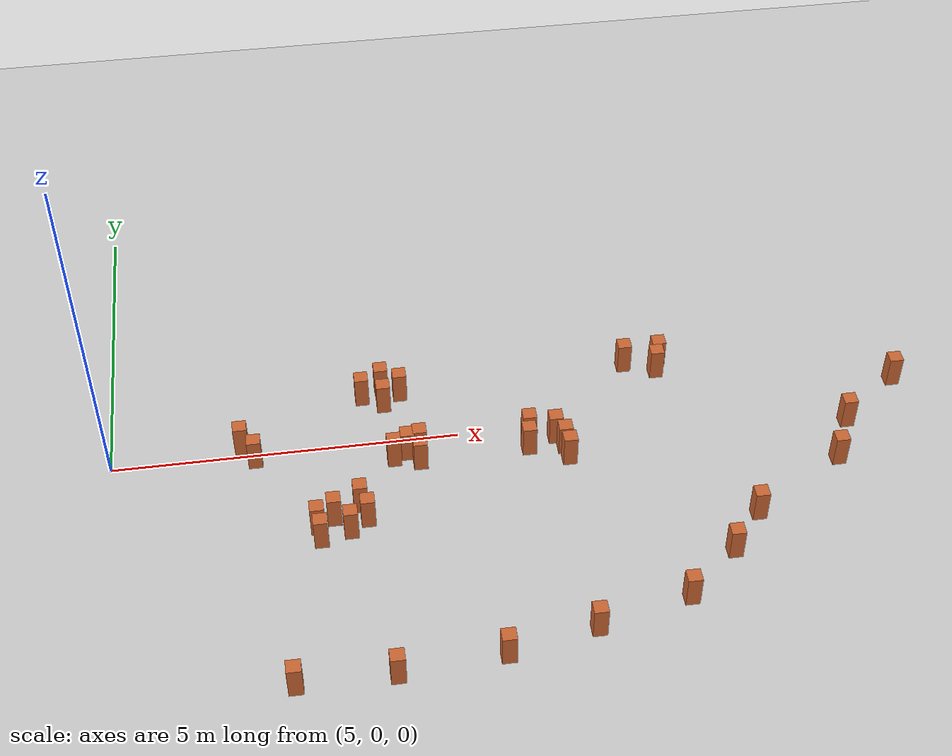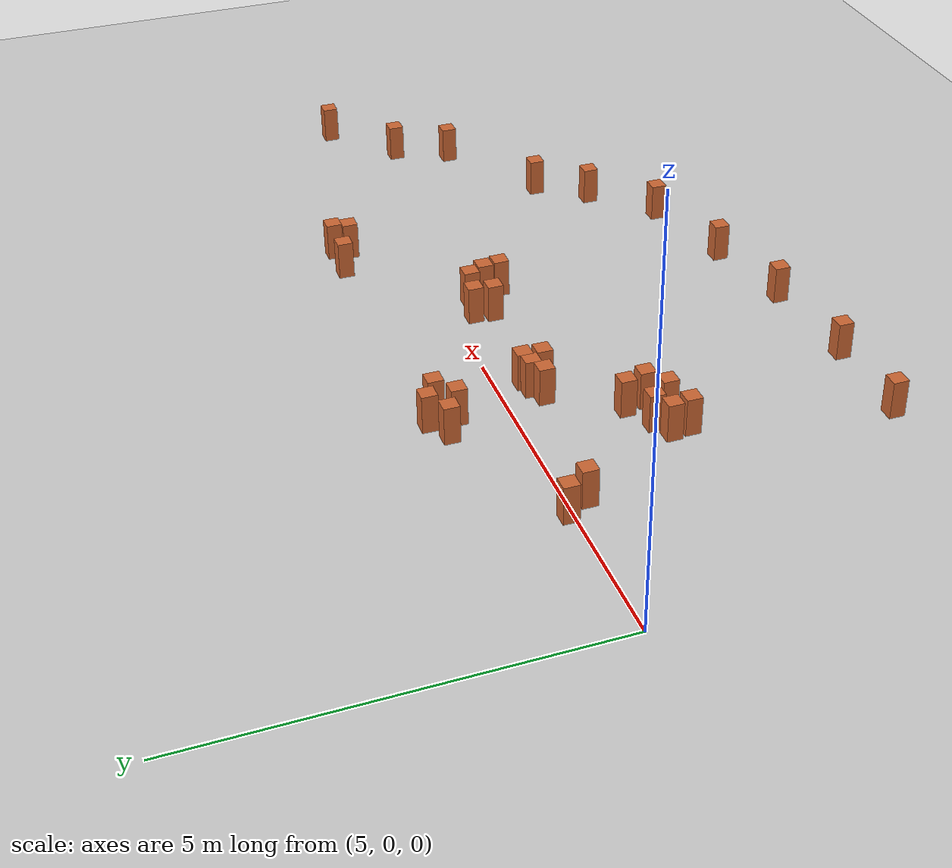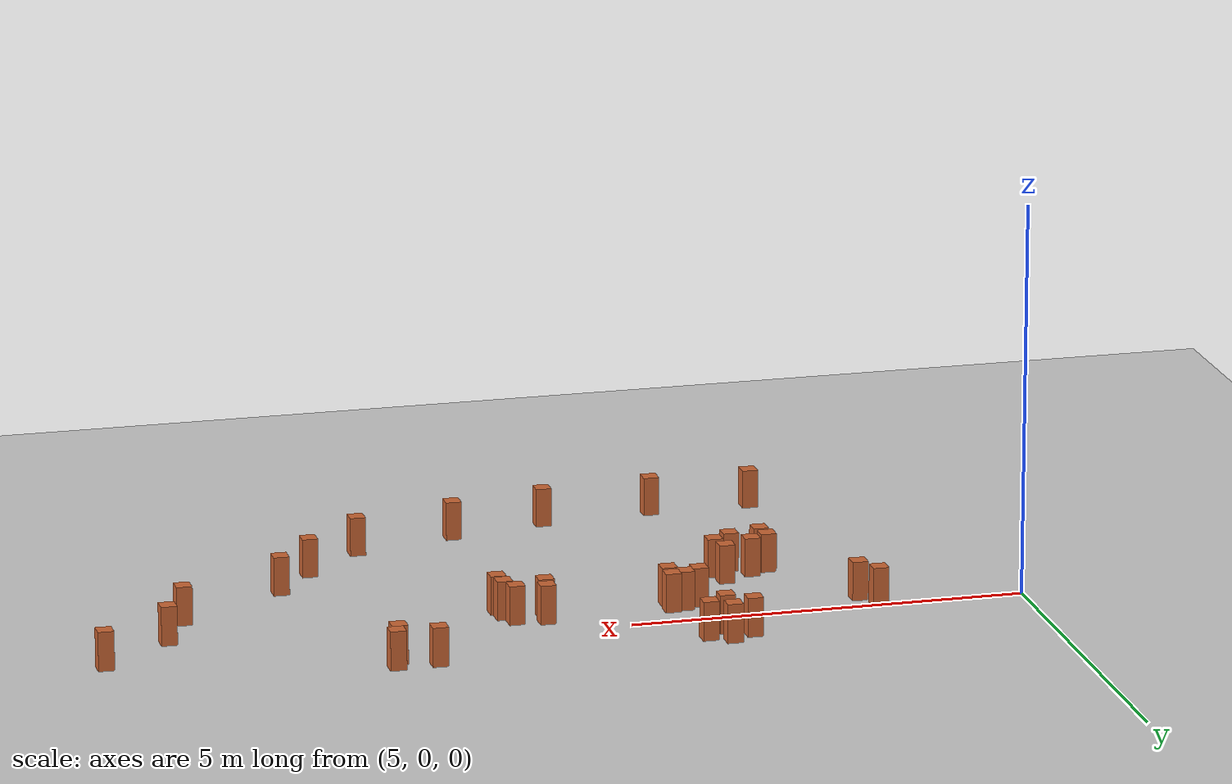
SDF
<sdf version="1.9">
 <world name="default">
  <model name="ground_plane">
   <static>true</static>
   <link name="link">
    <collision name="collision">
     <geometry><plane><normal>0 0 1</normal><size>100 100</size></plane></geometry>
     <surface><friction><ode><mu>100</mu><mu2>50</mu2></ode></friction></surface>
    </collision>
    <visual name="visual">
     <cast_shadows>false</cast_shadows>
     <geometry><plane><normal>0 0 1</normal><size>100 100</size></plane></geometry>
     <material>
      <ambient>0.6 0.6 0.6 1</ambient>
      <diffuse>0.8 0.8 0.8 1</diffuse>
      <specular>0.1 0.1 0.1 1</specular>
     </material>
    </visual>
    <inertial>
     <mass>1</mass>
     <inertia><ixx>1</ixx><ixy>0</ixy><ixz>0</ixz><iyy>1</iyy><iyz>0</iyz><izz>1</izz></inertia>
    </inertial>
   </link>
  </model>
  <model name="wood_cube_10cm_clone_0_clone_4_42">
   <link name="link">
    <pose>0 0 0.05 0 -0 0</pose>
    <inertial>
     <mass>0.51670000000000005</mass>
     <inertia>
      <ixx>0.00086116700000000003</ixx>
      <ixy>0</ixy>
      <ixz>0</ixz>
      <iyy>0.00086116700000000003</iyy>
      <iyz>0</iyz>
      <izz>0.00086116700000000003</izz>
     </inertia>
    </inertial>
    <collision name="collision">
     <geometry><box><size>0.2 0.2 0.5</size></box></geometry>
     <surface>
      <contact>
       <poissons_ratio>0.34699999999999998</poissons_ratio>
       <elastic_modulus>8800000000</elastic_modulus>
       <ode><kp>100000</kp><kd>100</kd><max_vel>100</max_vel><min_depth>0.001</min_depth></ode>
      </contact>
      <friction>
       <torsional>
        <coefficient>1</coefficient>
        <use_patch_radius>false</use_patch_radius>
        <surface_radius>0.01</surface_radius>
       </torsional>
      </friction>
     </surface>
    </collision>
    <visual name="visual">
     <geometry><box><size>0.2 0.2 0.5</size></box></geometry>
     <material>
      <ambient>0.6 0.3 0.1 1</ambient>
      <diffuse>0.8 0.4 0.2 1</diffuse>
      <specular>0.1 0.1 0.1 1</specular>
     </material>
    </visual>
   </link>
   <pose>6.87878 0.095495 0.249999 -0 -0 -0</pose>
   <static>false</static>
  </model>
  <model name="wood_cube_10cm_clone_0_clone_4_44">
   <link name="link">
    <pose>0 0 0.05 0 -0 0</pose>
    <inertial>
     <mass>0.51670000000000005</mass>
     <inertia>
      <ixx>0.00086116700000000003</ixx>
      <ixy>0</ixy>
      <ixz>0</ixz>
      <iyy>0.00086116700000000003</iyy>
      <iyz>0</iyz>
      <izz>0.00086116700000000003</izz>
     </inertia>
    </inertial>
    <collision name="collision">
     <geometry><box><size>0.2 0.2 0.5</size></box></geometry>
     <surface>
      <contact>
       <poissons_ratio>0.34699999999999998</poissons_ratio>
       <elastic_modulus>8800000000</elastic_modulus>
       <ode><kp>100000</kp><kd>100</kd><max_vel>100</max_vel><min_depth>0.001</min_depth></ode>
      </contact>
      <friction>
       <torsional>
        <coefficient>1</coefficient>
        <use_patch_radius>false</use_patch_radius>
        <surface_radius>0.01</surface_radius>
       </torsional>
      </friction>
     </surface>
    </collision>
    <visual name="visual">
     <geometry><box><size>0.2 0.2 0.5</size></box></geometry>
     <material>
      <ambient>0.6 0.3 0.1 1</ambient>
      <diffuse>0.8 0.4 0.2 1</diffuse>
      <specular>0.1 0.1 0.1 1</specular>
     </material>
    </visual>
   </link>
   <pose>7.0615 -0.194677 0.249999 -0 -0 -0</pose>
   <static>false</static>
  </model>
  <model name="wood_cube_10cm_clone_0_clone_4_67">
   <link name="link">
    <pose>0 0 0.05 0 -0 0</pose>
    <inertial>
     <mass>0.51670000000000005</mass>
     <inertia>
      <ixx>0.00086116700000000003</ixx>
      <ixy>0</ixy>
      <ixz>0</ixz>
      <iyy>0.00086116700000000003</iyy>
      <iyz>0</iyz>
      <izz>0.00086116700000000003</izz>
     </inertia>
    </inertial>
    <collision name="collision">
     <geometry><box><size>0.2 0.2 0.5</size></box></geometry>
     <surface>
      <contact>
       <poissons_ratio>0.34699999999999998</poissons_ratio>
       <elastic_modulus>8800000000</elastic_modulus>
       <ode><kp>100000</kp><kd>100</kd><max_vel>100</max_vel><min_depth>0.001</min_depth></ode>
      </contact>
      <friction>
       <torsional>
        <coefficient>1</coefficient>
        <use_patch_radius>false</use_patch_radius>
        <surface_radius>0.01</surface_radius>
       </torsional>
      </friction>
     </surface>
    </collision>
    <visual name="visual">
     <geometry><box><size>0.2 0.2 0.5</size></box></geometry>
     <material>
      <ambient>0.6 0.3 0.1 1</ambient>
      <diffuse>0.8 0.4 0.2 1</diffuse>
      <specular>0.1 0.1 0.1 1</specular>
     </material>
    </visual>
   </link>
   <pose>8.10121 -1.43609 0.249999 -0 -0 -0</pose>
   <static>false</static>
  </model>
  <model name="wood_cube_10cm_clone_0_clone_4_68">
   <link name="link">
    <pose>0 0 0.05 0 -0 0</pose>
    <inertial>
     <mass>0.51670000000000005</mass>
     <inertia>
      <ixx>0.00086116700000000003</ixx>
      <ixy>0</ixy>
      <ixz>0</ixz>
      <iyy>0.00086116700000000003</iyy>
      <iyz>0</iyz>
      <izz>0.00086116700000000003</izz>
     </inertia>
    </inertial>
    <collision name="collision">
     <geometry><box><size>0.2 0.2 0.5</size></box></geometry>
     <surface>
      <contact>
       <poissons_ratio>0.34699999999999998</poissons_ratio>
       <elastic_modulus>8800000000</elastic_modulus>
       <ode><kp>100000</kp><kd>100</kd><max_vel>100</max_vel><min_depth>0.001</min_depth></ode>
      </contact>
      <friction>
       <torsional>
        <coefficient>1</coefficient>
        <use_patch_radius>false</use_patch_radius>
        <surface_radius>0.01</surface_radius>
       </torsional>
      </friction>
     </surface>
    </collision>
    <visual name="visual">
     <geometry><box><size>0.2 0.2 0.5</size></box></geometry>
     <material>
      <ambient>0.6 0.3 0.1 1</ambient>
      <diffuse>0.8 0.4 0.2 1</diffuse>
      <specular>0.1 0.1 0.1 1</specular>
     </material>
    </visual>
   </link>
   <pose>7.86149 -1.55988 0.249999 -0 -0 -0</pose>
   <static>false</static>
  </model>
  <model name="wood_cube_10cm_clone_0_clone_4_69">
   <link name="link">
    <pose>0 0 0.05 0 -0 0</pose>
    <inertial>
     <mass>0.51670000000000005</mass>
     <inertia>
      <ixx>0.00086116700000000003</ixx>
      <ixy>0</ixy>
      <ixz>0</ixz>
      <iyy>0.00086116700000000003</iyy>
      <iyz>0</iyz>
      <izz>0.00086116700000000003</izz>
     </inertia>
    </inertial>
    <collision name="collision">
     <geometry><box><size>0.2 0.2 0.5</size></box></geometry>
     <surface>
      <contact>
       <poissons_ratio>0.34699999999999998</poissons_ratio>
       <elastic_modulus>8800000000</elastic_modulus>
       <ode><kp>100000</kp><kd>100</kd><max_vel>100</max_vel><min_depth>0.001</min_depth></ode>
      </contact>
      <friction>
       <torsional>
        <coefficient>1</coefficient>
        <use_patch_radius>false</use_patch_radius>
        <surface_radius>0.01</surface_radius>
       </torsional>
      </friction>
     </surface>
    </collision>
    <visual name="visual">
     <geometry><box><size>0.2 0.2 0.5</size></box></geometry>
     <material>
      <ambient>0.6 0.3 0.1 1</ambient>
      <diffuse>0.8 0.4 0.2 1</diffuse>
      <specular>0.1 0.1 0.1 1</specular>
     </material>
    </visual>
   </link>
   <pose>8.31239 -1.6995 0.249999 -0 0 0</pose>
   <static>false</static>
  </model>
  <model name="wood_cube_10cm_clone_0_clone_4_70">
   <link name="link">
    <pose>0 0 0.05 0 -0 0</pose>
    <inertial>
     <mass>0.51670000000000005</mass>
     <inertia>
      <ixx>0.00086116700000000003</ixx>
      <ixy>0</ixy>
      <ixz>0</ixz>
      <iyy>0.00086116700000000003</iyy>
      <iyz>0</iyz>
      <izz>0.00086116700000000003</izz>
     </inertia>
    </inertial>
    <collision name="collision">
     <geometry><box><size>0.2 0.2 0.5</size></box></geometry>
     <surface>
      <contact>
       <poissons_ratio>0.34699999999999998</poissons_ratio>
       <elastic_modulus>8800000000</elastic_modulus>
       <ode><kp>100000</kp><kd>100</kd><max_vel>100</max_vel><min_depth>0.001</min_depth></ode>
      </contact>
      <friction>
       <torsional>
        <coefficient>1</coefficient>
        <use_patch_radius>false</use_patch_radius>
        <surface_radius>0.01</surface_radius>
       </torsional>
      </friction>
     </surface>
    </collision>
    <visual name="visual">
     <geometry><box><size>0.2 0.2 0.5</size></box></geometry>
     <material>
      <ambient>0.6 0.3 0.1 1</ambient>
      <diffuse>0.8 0.4 0.2 1</diffuse>
      <specular>0.1 0.1 0.1 1</specular>
     </material>
    </visual>
   </link>
   <pose>7.89296 -1.80447 0.249999 -0 0 0</pose>
   <static>false</static>
  </model>
  <model name="wood_cube_10cm_clone_0_clone_4_71">
   <link name="link">
    <pose>0 0 0.05 0 -0 0</pose>
    <inertial>
     <mass>0.51670000000000005</mass>
     <inertia>
      <ixx>0.00086116700000000003</ixx>
      <ixy>0</ixy>
      <ixz>0</ixz>
      <iyy>0.00086116700000000003</iyy>
      <iyz>0</iyz>
      <izz>0.00086116700000000003</izz>
     </inertia>
    </inertial>
    <collision name="collision">
     <geometry><box><size>0.2 0.2 0.5</size></box></geometry>
     <surface>
      <contact>
       <poissons_ratio>0.34699999999999998</poissons_ratio>
       <elastic_modulus>8800000000</elastic_modulus>
       <ode><kp>100000</kp><kd>100</kd><max_vel>100</max_vel><min_depth>0.001</min_depth></ode>
      </contact>
      <friction>
       <torsional>
        <coefficient>1</coefficient>
        <use_patch_radius>false</use_patch_radius>
        <surface_radius>0.01</surface_radius>
       </torsional>
      </friction>
     </surface>
    </collision>
    <visual name="visual">
     <geometry><box><size>0.2 0.2 0.5</size></box></geometry>
     <material>
      <ambient>0.6 0.3 0.1 1</ambient>
      <diffuse>0.8 0.4 0.2 1</diffuse>
      <specular>0.1 0.1 0.1 1</specular>
     </material>
    </visual>
   </link>
   <pose>8.56204 -1.51927 0.249999 -0 -0 -0</pose>
   <static>false</static>
  </model>
  <model name="wood_cube_10cm_clone_0_clone_4_72">
   <link name="link">
    <pose>0 0 0.05 0 -0 0</pose>
    <inertial>
     <mass>0.51670000000000005</mass>
     <inertia>
      <ixx>0.00086116700000000003</ixx>
      <ixy>0</ixy>
      <ixz>0</ixz>
      <iyy>0.00086116700000000003</iyy>
      <iyz>0</iyz>
      <izz>0.00086116700000000003</izz>
     </inertia>
    </inertial>
    <collision name="collision">
     <geometry><box><size>0.2 0.2 0.5</size></box></geometry>
     <surface>
      <contact>
       <poissons_ratio>0.34699999999999998</poissons_ratio>
       <elastic_modulus>8800000000</elastic_modulus>
       <ode><kp>100000</kp><kd>100</kd><max_vel>100</max_vel><min_depth>0.001</min_depth></ode>
      </contact>
      <friction>
       <torsional>
        <coefficient>1</coefficient>
        <use_patch_radius>false</use_patch_radius>
        <surface_radius>0.01</surface_radius>
       </torsional>
      </friction>
     </surface>
    </collision>
    <visual name="visual">
     <geometry><box><size>0.2 0.2 0.5</size></box></geometry>
     <material>
      <ambient>0.6 0.3 0.1 1</ambient>
      <diffuse>0.8 0.4 0.2 1</diffuse>
      <specular>0.1 0.1 0.1 1</specular>
     </material>
    </visual>
   </link>
   <pose>8.48013 -1.24153 0.249999 -0 -0 -0</pose>
   <static>false</static>
  </model>
  <model name="wood_cube_10cm_clone_0_clone_4_44_1">
   <link name="link">
    <pose>0 0 0.05 0 -0 0</pose>
    <inertial>
     <mass>0.51670000000000005</mass>
     <inertia>
      <ixx>0.00086116700000000003</ixx>
      <ixy>0</ixy>
      <ixz>0</ixz>
      <iyy>0.00086116700000000003</iyy>
      <iyz>0</iyz>
      <izz>0.00086116700000000003</izz>
     </inertia>
    </inertial>
    <collision name="collision">
     <geometry><box><size>0.2 0.2 0.5</size></box></geometry>
     <surface>
      <contact>
       <poissons_ratio>0.34699999999999998</poissons_ratio>
       <elastic_modulus>8800000000</elastic_modulus>
       <ode><kp>100000</kp><kd>100</kd><max_vel>100</max_vel><min_depth>0.001</min_depth></ode>
      </contact>
      <friction>
       <torsional>
        <coefficient>1</coefficient>
        <use_patch_radius>false</use_patch_radius>
        <surface_radius>0.01</surface_radius>
       </torsional>
      </friction>
     </surface>
    </collision>
    <visual name="visual">
     <geometry><box><size>0.2 0.2 0.5</size></box></geometry>
     <material>
      <ambient>0.6 0.3 0.1 1</ambient>
      <diffuse>0.8 0.4 0.2 1</diffuse>
      <specular>0.1 0.1 0.1 1</specular>
     </material>
    </visual>
   </link>
   <pose>8.68254 0.850137 0.249999 0 -0 0</pose>
   <static>false</static>
  </model>
  <model name="wood_cube_10cm_clone_0_clone_4_44_2">
   <link name="link">
    <pose>0 0 0.05 0 -0 0</pose>
    <inertial>
     <mass>0.51670000000000005</mass>
     <inertia>
      <ixx>0.00086116700000000003</ixx>
      <ixy>0</ixy>
      <ixz>0</ixz>
      <iyy>0.00086116700000000003</iyy>
      <iyz>0</iyz>
      <izz>0.00086116700000000003</izz>
     </inertia>
    </inertial>
    <collision name="collision">
     <geometry><box><size>0.2 0.2 0.5</size></box></geometry>
     <surface>
      <contact>
       <poissons_ratio>0.34699999999999998</poissons_ratio>
       <elastic_modulus>8800000000</elastic_modulus>
       <ode><kp>100000</kp><kd>100</kd><max_vel>100</max_vel><min_depth>0.001</min_depth></ode>
      </contact>
      <friction>
       <torsional>
        <coefficient>1</coefficient>
        <use_patch_radius>false</use_patch_radius>
        <surface_radius>0.01</surface_radius>
       </torsional>
      </friction>
     </surface>
    </collision>
    <visual name="visual">
     <geometry><box><size>0.2 0.2 0.5</size></box></geometry>
     <material>
      <ambient>0.6 0.3 0.1 1</ambient>
      <diffuse>0.8 0.4 0.2 1</diffuse>
      <specular>0.1 0.1 0.1 1</specular>
     </material>
    </visual>
   </link>
   <pose>8.98205 1.01877 0.249999 0 -0 0</pose>
   <static>false</static>
  </model>
  <model name="wood_cube_10cm_clone_0_clone_4_44_3">
   <link name="link">
    <pose>0 0 0.05 0 -0 0</pose>
    <inertial>
     <mass>0.51670000000000005</mass>
     <inertia>
      <ixx>0.00086116700000000003</ixx>
      <ixy>0</ixy>
      <ixz>0</ixz>
      <iyy>0.00086116700000000003</iyy>
      <iyz>0</iyz>
      <izz>0.00086116700000000003</izz>
     </inertia>
    </inertial>
    <collision name="collision">
     <geometry><box><size>0.2 0.2 0.5</size></box></geometry>
     <surface>
      <contact>
       <poissons_ratio>0.34699999999999998</poissons_ratio>
       <elastic_modulus>8800000000</elastic_modulus>
       <ode><kp>100000</kp><kd>100</kd><max_vel>100</max_vel><min_depth>0.001</min_depth></ode>
      </contact>
      <friction>
       <torsional>
        <coefficient>1</coefficient>
        <use_patch_radius>false</use_patch_radius>
        <surface_radius>0.01</surface_radius>
       </torsional>
      </friction>
     </surface>
    </collision>
    <visual name="visual">
     <geometry><box><size>0.2 0.2 0.5</size></box></geometry>
     <material>
      <ambient>0.6 0.3 0.1 1</ambient>
      <diffuse>0.8 0.4 0.2 1</diffuse>
      <specular>0.1 0.1 0.1 1</specular>
     </material>
    </visual>
   </link>
   <pose>9.24554 0.860534 0.249999 0 -0 0</pose>
   <static>false</static>
  </model>
  <model name="wood_cube_10cm_clone_0_clone_4_44_4">
   <link name="link">
    <pose>0 0 0.05 0 -0 0</pose>
    <inertial>
     <mass>0.51670000000000005</mass>
     <inertia>
      <ixx>0.00086116700000000003</ixx>
      <ixy>0</ixy>
      <ixz>0</ixz>
      <iyy>0.00086116700000000003</iyy>
      <iyz>0</iyz>
      <izz>0.00086116700000000003</izz>
     </inertia>
    </inertial>
    <collision name="collision">
     <geometry><box><size>0.2 0.2 0.5</size></box></geometry>
     <surface>
      <contact>
       <poissons_ratio>0.34699999999999998</poissons_ratio>
       <elastic_modulus>8800000000</elastic_modulus>
       <ode><kp>100000</kp><kd>100</kd><max_vel>100</max_vel><min_depth>0.001</min_depth></ode>
      </contact>
      <friction>
       <torsional>
        <coefficient>1</coefficient>
        <use_patch_radius>false</use_patch_radius>
        <surface_radius>0.01</surface_radius>
       </torsional>
      </friction>
     </surface>
    </collision>
    <visual name="visual">
     <geometry><box><size>0.2 0.2 0.5</size></box></geometry>
     <material>
      <ambient>0.6 0.3 0.1 1</ambient>
      <diffuse>0.8 0.4 0.2 1</diffuse>
      <specular>0.1 0.1 0.1 1</specular>
     </material>
    </visual>
   </link>
   <pose>8.98502 0.65974 0.249999 0 -0 0</pose>
   <static>false</static>
  </model>
  <model name="wood_cube_10cm_clone_0_clone_4_44_28">
   <link name="link">
    <pose>0 0 0.05 0 -0 0</pose>
    <inertial>
     <mass>0.51670000000000005</mass>
     <inertia>
      <ixx>0.00086116700000000003</ixx>
      <ixy>0</ixy>
      <ixz>0</ixz>
      <iyy>0.00086116700000000003</iyy>
      <iyz>0</iyz>
      <izz>0.00086116700000000003</izz>
     </inertia>
    </inertial>
    <collision name="collision">
     <geometry><box><size>0.2 0.2 0.5</size></box></geometry>
     <surface>
      <contact>
       <poissons_ratio>0.34699999999999998</poissons_ratio>
       <elastic_modulus>8800000000</elastic_modulus>
       <ode><kp>100000</kp><kd>100</kd><max_vel>100</max_vel><min_depth>0.001</min_depth></ode>
      </contact>
      <friction>
       <torsional>
        <coefficient>1</coefficient>
        <use_patch_radius>false</use_patch_radius>
        <surface_radius>0.01</surface_radius>
       </torsional>
      </friction>
     </surface>
    </collision>
    <visual name="visual">
     <geometry><box><size>0.2 0.2 0.5</size></box></geometry>
     <material>
      <ambient>0.6 0.3 0.1 1</ambient>
      <diffuse>0.8 0.4 0.2 1</diffuse>
      <specular>0.1 0.1 0.1 1</specular>
     </material>
    </visual>
   </link>
   <pose>16.5826 0.174463 0.249999 -0 0 -0</pose>
   <static>false</static>
  </model>
  <model name="wood_cube_10cm_clone_0_clone_4_44_29">
   <link name="link">
    <pose>0 0 0.05 0 -0 0</pose>
    <inertial>
     <mass>0.51670000000000005</mass>
     <inertia>
      <ixx>0.00086116700000000003</ixx>
      <ixy>0</ixy>
      <ixz>0</ixz>
      <iyy>0.00086116700000000003</iyy>
      <iyz>0</iyz>
      <izz>0.00086116700000000003</izz>
     </inertia>
    </inertial>
    <collision name="collision">
     <geometry><box><size>0.2 0.2 0.5</size></box></geometry>
     <surface>
      <contact>
       <poissons_ratio>0.34699999999999998</poissons_ratio>
       <elastic_modulus>8800000000</elastic_modulus>
       <ode><kp>100000</kp><kd>100</kd><max_vel>100</max_vel><min_depth>0.001</min_depth></ode>
      </contact>
      <friction>
       <torsional>
        <coefficient>1</coefficient>
        <use_patch_radius>false</use_patch_radius>
        <surface_radius>0.01</surface_radius>
       </torsional>
      </friction>
     </surface>
    </collision>
    <visual name="visual">
     <geometry><box><size>0.2 0.2 0.5</size></box></geometry>
     <material>
      <ambient>0.6 0.3 0.1 1</ambient>
      <diffuse>0.8 0.4 0.2 1</diffuse>
      <specular>0.1 0.1 0.1 1</specular>
     </material>
    </visual>
   </link>
   <pose>15.6672 -0.575256 0.249999 0 -0 0</pose>
   <static>false</static>
  </model>
  <model name="wood_cube_10cm_clone_0_clone_4_44_30">
   <link name="link">
    <pose>0 0 0.05 0 -0 0</pose>
    <inertial>
     <mass>0.51670000000000005</mass>
     <inertia>
      <ixx>0.00086116700000000003</ixx>
      <ixy>0</ixy>
      <ixz>0</ixz>
      <iyy>0.00086116700000000003</iyy>
      <iyz>0</iyz>
      <izz>0.00086116700000000003</izz>
     </inertia>
    </inertial>
    <collision name="collision">
     <geometry><box><size>0.2 0.2 0.5</size></box></geometry>
     <surface>
      <contact>
       <poissons_ratio>0.34699999999999998</poissons_ratio>
       <elastic_modulus>8800000000</elastic_modulus>
       <ode><kp>100000</kp><kd>100</kd><max_vel>100</max_vel><min_depth>0.001</min_depth></ode>
      </contact>
      <friction>
       <torsional>
        <coefficient>1</coefficient>
        <use_patch_radius>false</use_patch_radius>
        <surface_radius>0.01</surface_radius>
       </torsional>
      </friction>
     </surface>
    </collision>
    <visual name="visual">
     <geometry><box><size>0.2 0.2 0.5</size></box></geometry>
     <material>
      <ambient>0.6 0.3 0.1 1</ambient>
      <diffuse>0.8 0.4 0.2 1</diffuse>
      <specular>0.1 0.1 0.1 1</specular>
     </material>
    </visual>
   </link>
   <pose>15.3405 -1.28308 0.249999 0 -0 0</pose>
   <static>false</static>
  </model>
  <model name="wood_cube_10cm_clone_0_clone_4_44_31">
   <link name="link">
    <pose>0 0 0.05 0 -0 0</pose>
    <inertial>
     <mass>0.51670000000000005</mass>
     <inertia>
      <ixx>0.00086116700000000003</ixx>
      <ixy>0</ixy>
      <ixz>0</ixz>
      <iyy>0.00086116700000000003</iyy>
      <iyz>0</iyz>
      <izz>0.00086116700000000003</izz>
     </inertia>
    </inertial>
    <collision name="collision">
     <geometry><box><size>0.2 0.2 0.5</size></box></geometry>
     <surface>
      <contact>
       <poissons_ratio>0.34699999999999998</poissons_ratio>
       <elastic_modulus>8800000000</elastic_modulus>
       <ode><kp>100000</kp><kd>100</kd><max_vel>100</max_vel><min_depth>0.001</min_depth></ode>
      </contact>
      <friction>
       <torsional>
        <coefficient>1</coefficient>
        <use_patch_radius>false</use_patch_radius>
        <surface_radius>0.01</surface_radius>
       </torsional>
      </friction>
     </surface>
    </collision>
    <visual name="visual">
     <geometry><box><size>0.2 0.2 0.5</size></box></geometry>
     <material>
      <ambient>0.6 0.3 0.1 1</ambient>
      <diffuse>0.8 0.4 0.2 1</diffuse>
      <specular>0.1 0.1 0.1 1</specular>
     </material>
    </visual>
   </link>
   <pose>13.95 -2.14065 0.249999 0 -0 0</pose>
   <static>false</static>
  </model>
  <model name="wood_cube_10cm_clone_0_clone_4_44_32">
   <link name="link">
    <pose>0 0 0.05 0 -0 0</pose>
    <inertial>
     <mass>0.51670000000000005</mass>
     <inertia>
      <ixx>0.00086116700000000003</ixx>
      <ixy>0</ixy>
      <ixz>0</ixz>
      <iyy>0.00086116700000000003</iyy>
      <iyz>0</iyz>
      <izz>0.00086116700000000003</izz>
     </inertia>
    </inertial>
    <collision name="collision">
     <geometry><box><size>0.2 0.2 0.5</size></box></geometry>
     <surface>
      <contact>
       <poissons_ratio>0.34699999999999998</poissons_ratio>
       <elastic_modulus>8800000000</elastic_modulus>
       <ode><kp>100000</kp><kd>100</kd><max_vel>100</max_vel><min_depth>0.001</min_depth></ode>
      </contact>
      <friction>
       <torsional>
        <coefficient>1</coefficient>
        <use_patch_radius>false</use_patch_radius>
        <surface_radius>0.01</surface_radius>
       </torsional>
      </friction>
     </surface>
    </collision>
    <visual name="visual">
     <geometry><box><size>0.2 0.2 0.5</size></box></geometry>
     <material>
      <ambient>0.6 0.3 0.1 1</ambient>
      <diffuse>0.8 0.4 0.2 1</diffuse>
      <specular>0.1 0.1 0.1 1</specular>
     </material>
    </visual>
   </link>
   <pose>13.4568 -2.76066 0.249999 0 -0 0</pose>
   <static>false</static>
  </model>
  <model name="wood_cube_10cm_clone_0_clone_4_44_33">
   <link name="link">
    <pose>0 0 0.05 0 -0 0</pose>
    <inertial>
     <mass>0.51670000000000005</mass>
     <inertia>
      <ixx>0.00086116700000000003</ixx>
      <ixy>0</ixy>
      <ixz>0</ixz>
      <iyy>0.00086116700000000003</iyy>
      <iyz>0</iyz>
      <izz>0.00086116700000000003</izz>
     </inertia>
    </inertial>
    <collision name="collision">
     <geometry><box><size>0.2 0.2 0.5</size></box></geometry>
     <surface>
      <contact>
       <poissons_ratio>0.34699999999999998</poissons_ratio>
       <elastic_modulus>8800000000</elastic_modulus>
       <ode><kp>100000</kp><kd>100</kd><max_vel>100</max_vel><min_depth>0.001</min_depth></ode>
      </contact>
      <friction>
       <torsional>
        <coefficient>1</coefficient>
        <use_patch_radius>false</use_patch_radius>
        <surface_radius>0.01</surface_radius>
       </torsional>
      </friction>
     </surface>
    </collision>
    <visual name="visual">
     <geometry><box><size>0.2 0.2 0.5</size></box></geometry>
     <material>
      <ambient>0.6 0.3 0.1 1</ambient>
      <diffuse>0.8 0.4 0.2 1</diffuse>
      <specular>0.1 0.1 0.1 1</specular>
     </material>
    </visual>
   </link>
   <pose>12.6935 -3.46727 0.249999 0 -0 0</pose>
   <static>false</static>
  </model>
  <model name="wood_cube_10cm_clone_0_clone_4_44_34">
   <link name="link">
    <pose>0 0 0.05 0 -0 0</pose>
    <inertial>
     <mass>0.51670000000000005</mass>
     <inertia>
      <ixx>0.00086116700000000003</ixx>
      <ixy>0</ixy>
      <ixz>0</ixz>
      <iyy>0.00086116700000000003</iyy>
      <iyz>0</iyz>
      <izz>0.00086116700000000003</izz>
     </inertia>
    </inertial>
    <collision name="collision">
     <geometry><box><size>0.2 0.2 0.5</size></box></geometry>
     <surface>
      <contact>
       <poissons_ratio>0.34699999999999998</poissons_ratio>
       <elastic_modulus>8800000000</elastic_modulus>
       <ode><kp>100000</kp><kd>100</kd><max_vel>100</max_vel><min_depth>0.001</min_depth></ode>
      </contact>
      <friction>
       <torsional>
        <coefficient>1</coefficient>
        <use_patch_radius>false</use_patch_radius>
        <surface_radius>0.01</surface_radius>
       </torsional>
      </friction>
     </surface>
    </collision>
    <visual name="visual">
     <geometry><box><size>0.2 0.2 0.5</size></box></geometry>
     <material>
      <ambient>0.6 0.3 0.1 1</ambient>
      <diffuse>0.8 0.4 0.2 1</diffuse>
      <specular>0.1 0.1 0.1 1</specular>
     </material>
    </visual>
   </link>
   <pose>11.3787 -3.80505 0.249999 0 -0 0</pose>
   <static>false</static>
  </model>
  <model name="wood_cube_10cm_clone_0_clone_4_44_35">
   <link name="link">
    <pose>0 0 0.05 0 -0 0</pose>
    <inertial>
     <mass>0.51670000000000005</mass>
     <inertia>
      <ixx>0.00086116700000000003</ixx>
      <ixy>0</ixy>
      <ixz>0</ixz>
      <iyy>0.00086116700000000003</iyy>
      <iyz>0</iyz>
      <izz>0.00086116700000000003</izz>
     </inertia>
    </inertial>
    <collision name="collision">
     <geometry><box><size>0.2 0.2 0.5</size></box></geometry>
     <surface>
      <contact>
       <poissons_ratio>0.34699999999999998</poissons_ratio>
       <elastic_modulus>8800000000</elastic_modulus>
       <ode><kp>100000</kp><kd>100</kd><max_vel>100</max_vel><min_depth>0.001</min_depth></ode>
      </contact>
      <friction>
       <torsional>
        <coefficient>1</coefficient>
        <use_patch_radius>false</use_patch_radius>
        <surface_radius>0.01</surface_radius>
       </torsional>
      </friction>
     </surface>
    </collision>
    <visual name="visual">
     <geometry><box><size>0.2 0.2 0.5</size></box></geometry>
     <material>
      <ambient>0.6 0.3 0.1 1</ambient>
      <diffuse>0.8 0.4 0.2 1</diffuse>
      <specular>0.1 0.1 0.1 1</specular>
     </material>
    </visual>
   </link>
   <pose>10.1426 -4.06972 0.249999 -0 0 -0</pose>
   <static>false</static>
  </model>
  <model name="wood_cube_10cm_clone_0_clone_4_44_36">
   <link name="link">
    <pose>0 0 0.05 0 -0 0</pose>
    <inertial>
     <mass>0.51670000000000005</mass>
     <inertia>
      <ixx>0.00086116700000000003</ixx>
      <ixy>0</ixy>
      <ixz>0</ixz>
      <iyy>0.00086116700000000003</iyy>
      <iyz>0</iyz>
      <izz>0.00086116700000000003</izz>
     </inertia>
    </inertial>
    <collision name="collision">
     <geometry><box><size>0.2 0.2 0.5</size></box></geometry>
     <surface>
      <contact>
       <poissons_ratio>0.34699999999999998</poissons_ratio>
       <elastic_modulus>8800000000</elastic_modulus>
       <ode><kp>100000</kp><kd>100</kd><max_vel>100</max_vel><min_depth>0.001</min_depth></ode>
      </contact>
      <friction>
       <torsional>
        <coefficient>1</coefficient>
        <use_patch_radius>false</use_patch_radius>
        <surface_radius>0.01</surface_radius>
       </torsional>
      </friction>
     </surface>
    </collision>
    <visual name="visual">
     <geometry><box><size>0.2 0.2 0.5</size></box></geometry>
     <material>
      <ambient>0.6 0.3 0.1 1</ambient>
      <diffuse>0.8 0.4 0.2 1</diffuse>
      <specular>0.1 0.1 0.1 1</specular>
     </material>
    </visual>
   </link>
   <pose>8.6974 -4.19071 0.249999 -0 0 0</pose>
   <static>false</static>
  </model>
  <model name="wood_cube_10cm_clone_0_clone_4_44_37">
   <link name="link">
    <pose>0 0 0.05 0 -0 0</pose>
    <inertial>
     <mass>0.51670000000000005</mass>
     <inertia>
      <ixx>0.00086116700000000003</ixx>
      <ixy>0</ixy>
      <ixz>0</ixz>
      <iyy>0.00086116700000000003</iyy>
      <iyz>0</iyz>
      <izz>0.00086116700000000003</izz>
     </inertia>
    </inertial>
    <collision name="collision">
     <geometry><box><size>0.2 0.2 0.5</size></box></geometry>
     <surface>
      <contact>
       <poissons_ratio>0.34699999999999998</poissons_ratio>
       <elastic_modulus>8800000000</elastic_modulus>
       <ode><kp>100000</kp><kd>100</kd><max_vel>100</max_vel><min_depth>0.001</min_depth></ode>
      </contact>
      <friction>
       <torsional>
        <coefficient>1</coefficient>
        <use_patch_radius>false</use_patch_radius>
        <surface_radius>0.01</surface_radius>
       </torsional>
      </friction>
     </surface>
    </collision>
    <visual name="visual">
     <geometry><box><size>0.2 0.2 0.5</size></box></geometry>
     <material>
      <ambient>0.6 0.3 0.1 1</ambient>
      <diffuse>0.8 0.4 0.2 1</diffuse>
      <specular>0.1 0.1 0.1 1</specular>
     </material>
    </visual>
   </link>
   <pose>7.38992 -4.18355 0.249999 0 -0 0</pose>
   <static>false</static>
  </model>
  <model name="wood_cube_10cm_clone_0_clone_4_44_64">
   <link name="link">
    <pose>0 0 0.05 0 -0 0</pose>
    <inertial>
     <mass>0.51670000000000005</mass>
     <inertia>
      <ixx>0.00086116700000000003</ixx>
      <ixy>0</ixy>
      <ixz>0</ixz>
      <iyy>0.00086116700000000003</iyy>
      <iyz>0</iyz>
      <izz>0.00086116700000000003</izz>
     </inertia>
    </inertial>
    <collision name="collision">
     <geometry><box><size>0.2 0.2 0.5</size></box></geometry>
     <surface>
      <contact>
       <poissons_ratio>0.34699999999999998</poissons_ratio>
       <elastic_modulus>8800000000</elastic_modulus>
       <ode><kp>100000</kp><kd>100</kd><max_vel>100</max_vel><min_depth>0.001</min_depth></ode>
      </contact>
      <friction>
       <torsional>
        <coefficient>1</coefficient>
        <use_patch_radius>false</use_patch_radius>
        <surface_radius>0.01</surface_radius>
       </torsional>
      </friction>
     </surface>
    </collision>
    <visual name="visual">
     <geometry><box><size>0.2 0.2 0.5</size></box></geometry>
     <material>
      <ambient>0.6 0.3 0.1 1</ambient>
      <diffuse>0.8 0.4 0.2 1</diffuse>
      <specular>0.1 0.1 0.1 1</specular>
     </material>
    </visual>
   </link>
   <pose>13.1759 1.02311 0.25 -1e-06 0 -7.9e-05</pose>
   <static>false</static>
  </model>
  <model name="wood_cube_10cm_clone_0_clone_4_44_66">
   <link name="link">
    <pose>0 0 0.05 0 -0 0</pose>
    <inertial>
     <mass>0.51670000000000005</mass>
     <inertia>
      <ixx>0.00086116700000000003</ixx>
      <ixy>0</ixy>
      <ixz>0</ixz>
      <iyy>0.00086116700000000003</iyy>
      <iyz>0</iyz>
      <izz>0.00086116700000000003</izz>
     </inertia>
    </inertial>
    <collision name="collision">
     <geometry><box><size>0.2 0.2 0.5</size></box></geometry>
     <surface>
      <contact>
       <poissons_ratio>0.34699999999999998</poissons_ratio>
       <elastic_modulus>8800000000</elastic_modulus>
       <ode><kp>100000</kp><kd>100</kd><max_vel>100</max_vel><min_depth>0.001</min_depth></ode>
      </contact>
      <friction>
       <torsional>
        <coefficient>1</coefficient>
        <use_patch_radius>false</use_patch_radius>
        <surface_radius>0.01</surface_radius>
       </torsional>
      </friction>
     </surface>
    </collision>
    <visual name="visual">
     <geometry><box><size>0.2 0.2 0.5</size></box></geometry>
     <material>
      <ambient>0.6 0.3 0.1 1</ambient>
      <diffuse>0.8 0.4 0.2 1</diffuse>
      <specular>0.1 0.1 0.1 1</specular>
     </material>
    </visual>
   </link>
   <pose>12.6517 1.01441 0.249999 0 -0 0</pose>
   <static>false</static>
  </model>
  <model name="wood_cube_10cm_clone_0_clone_4_44_67">
   <link name="link">
    <pose>0 0 0.05 0 -0 0</pose>
    <inertial>
     <mass>0.51670000000000005</mass>
     <inertia>
      <ixx>0.00086116700000000003</ixx>
      <ixy>0</ixy>
      <ixz>0</ixz>
      <iyy>0.00086116700000000003</iyy>
      <iyz>0</iyz>
      <izz>0.00086116700000000003</izz>
     </inertia>
    </inertial>
    <collision name="collision">
     <geometry><box><size>0.2 0.2 0.5</size></box></geometry>
     <surface>
      <contact>
       <poissons_ratio>0.34699999999999998</poissons_ratio>
       <elastic_modulus>8800000000</elastic_modulus>
       <ode><kp>100000</kp><kd>100</kd><max_vel>100</max_vel><min_depth>0.001</min_depth></ode>
      </contact>
      <friction>
       <torsional>
        <coefficient>1</coefficient>
        <use_patch_radius>false</use_patch_radius>
        <surface_radius>0.01</surface_radius>
       </torsional>
      </friction>
     </surface>
    </collision>
    <visual name="visual">
     <geometry><box><size>0.2 0.2 0.5</size></box></geometry>
     <material>
      <ambient>0.6 0.3 0.1 1</ambient>
      <diffuse>0.8 0.4 0.2 1</diffuse>
      <specular>0.1 0.1 0.1 1</specular>
     </material>
    </visual>
   </link>
   <pose>13.1101 0.823117 0.25 0 -0 -7.9e-05</pose>
   <static>false</static>
  </model>
  <model name="wood_cube_10cm_clone_0_clone_4_44_68">
   <link name="link">
    <pose>0 0 0.05 0 -0 0</pose>
    <inertial>
     <mass>0.51670000000000005</mass>
     <inertia>
      <ixx>0.00086116700000000003</ixx>
      <ixy>0</ixy>
      <ixz>0</ixz>
      <iyy>0.00086116700000000003</iyy>
      <iyz>0</iyz>
      <izz>0.00086116700000000003</izz>
     </inertia>
    </inertial>
    <collision name="collision">
     <geometry><box><size>0.2 0.2 0.5</size></box></geometry>
     <surface>
      <contact>
       <poissons_ratio>0.34699999999999998</poissons_ratio>
       <elastic_modulus>8800000000</elastic_modulus>
       <ode><kp>100000</kp><kd>100</kd><max_vel>100</max_vel><min_depth>0.001</min_depth></ode>
      </contact>
      <friction>
       <torsional>
        <coefficient>1</coefficient>
        <use_patch_radius>false</use_patch_radius>
        <surface_radius>0.01</surface_radius>
       </torsional>
      </friction>
     </surface>
    </collision>
    <visual name="visual">
     <geometry><box><size>0.2 0.2 0.5</size></box></geometry>
     <material>
      <ambient>0.6 0.3 0.1 1</ambient>
      <diffuse>0.8 0.4 0.2 1</diffuse>
      <specular>0.1 0.1 0.1 1</specular>
     </material>
    </visual>
   </link>
   <pose>11.4927 -0.524392 0.249999 0 -0 0</pose>
   <static>false</static>
  </model>
  <model name="wood_cube_10cm_clone_0_clone_4_44_69">
   <link name="link">
    <pose>0 0 0.05 0 -0 0</pose>
    <inertial>
     <mass>0.51670000000000005</mass>
     <inertia>
      <ixx>0.00086116700000000003</ixx>
      <ixy>0</ixy>
      <ixz>0</ixz>
      <iyy>0.00086116700000000003</iyy>
      <iyz>0</iyz>
      <izz>0.00086116700000000003</izz>
     </inertia>
    </inertial>
    <collision name="collision">
     <geometry><box><size>0.2 0.2 0.5</size></box></geometry>
     <surface>
      <contact>
       <poissons_ratio>0.34699999999999998</poissons_ratio>
       <elastic_modulus>8800000000</elastic_modulus>
       <ode><kp>100000</kp><kd>100</kd><max_vel>100</max_vel><min_depth>0.001</min_depth></ode>
      </contact>
      <friction>
       <torsional>
        <coefficient>1</coefficient>
        <use_patch_radius>false</use_patch_radius>
        <surface_radius>0.01</surface_radius>
       </torsional>
      </friction>
     </surface>
    </collision>
    <visual name="visual">
     <geometry><box><size>0.2 0.2 0.5</size></box></geometry>
     <material>
      <ambient>0.6 0.3 0.1 1</ambient>
      <diffuse>0.8 0.4 0.2 1</diffuse>
      <specular>0.1 0.1 0.1 1</specular>
     </material>
    </visual>
   </link>
   <pose>11.3889 -0.305147 0.249999 0 -0 0</pose>
   <static>false</static>
  </model>
  <model name="wood_cube_10cm_clone_0_clone_4_44_70">
   <link name="link">
    <pose>0 0 0.05 0 -0 0</pose>
    <inertial>
     <mass>0.51670000000000005</mass>
     <inertia>
      <ixx>0.00086116700000000003</ixx>
      <ixy>0</ixy>
      <ixz>0</ixz>
      <iyy>0.00086116700000000003</iyy>
      <iyz>0</iyz>
      <izz>0.00086116700000000003</izz>
     </inertia>
    </inertial>
    <collision name="collision">
     <geometry><box><size>0.2 0.2 0.5</size></box></geometry>
     <surface>
      <contact>
       <poissons_ratio>0.34699999999999998</poissons_ratio>
       <elastic_modulus>8800000000</elastic_modulus>
       <ode><kp>100000</kp><kd>100</kd><max_vel>100</max_vel><min_depth>0.001</min_depth></ode>
      </contact>
      <friction>
       <torsional>
        <coefficient>1</coefficient>
        <use_patch_radius>false</use_patch_radius>
        <surface_radius>0.01</surface_radius>
       </torsional>
      </friction>
     </surface>
    </collision>
    <visual name="visual">
     <geometry><box><size>0.2 0.2 0.5</size></box></geometry>
     <material>
      <ambient>0.6 0.3 0.1 1</ambient>
      <diffuse>0.8 0.4 0.2 1</diffuse>
      <specular>0.1 0.1 0.1 1</specular>
     </material>
    </visual>
   </link>
   <pose>10.9786 -0.478728 0.249999 0 -0 0</pose>
   <static>false</static>
  </model>
  <model name="wood_cube_10cm_clone_0_clone_4_44_71">
   <link name="link">
    <pose>0 0 0.05 0 -0 0</pose>
    <inertial>
     <mass>0.51670000000000005</mass>
     <inertia>
      <ixx>0.00086116700000000003</ixx>
      <ixy>0</ixy>
      <ixz>0</ixz>
      <iyy>0.00086116700000000003</iyy>
      <iyz>0</iyz>
      <izz>0.00086116700000000003</izz>
     </inertia>
    </inertial>
    <collision name="collision">
     <geometry><box><size>0.2 0.2 0.5</size></box></geometry>
     <surface>
      <contact>
       <poissons_ratio>0.34699999999999998</poissons_ratio>
       <elastic_modulus>8800000000</elastic_modulus>
       <ode><kp>100000</kp><kd>100</kd><max_vel>100</max_vel><min_depth>0.001</min_depth></ode>
      </contact>
      <friction>
       <torsional>
        <coefficient>1</coefficient>
        <use_patch_radius>false</use_patch_radius>
        <surface_radius>0.01</surface_radius>
       </torsional>
      </friction>
     </surface>
    </collision>
    <visual name="visual">
     <geometry><box><size>0.2 0.2 0.5</size></box></geometry>
     <material>
      <ambient>0.6 0.3 0.1 1</ambient>
      <diffuse>0.8 0.4 0.2 1</diffuse>
      <specular>0.1 0.1 0.1 1</specular>
     </material>
    </visual>
   </link>
   <pose>11.0159 -0.23121 0.249999 0 -0 0</pose>
   <static>false</static>
  </model>
  <model name="wood_cube_10cm_clone_0_clone_4_44_72">
   <link name="link">
    <pose>0 0 0.05 0 -0 0</pose>
    <inertial>
     <mass>0.51670000000000005</mass>
     <inertia>
      <ixx>0.00086116700000000003</ixx>
      <ixy>0</ixy>
      <ixz>0</ixz>
      <iyy>0.00086116700000000003</iyy>
      <iyz>0</iyz>
      <izz>0.00086116700000000003</izz>
     </inertia>
    </inertial>
    <collision name="collision">
     <geometry><box><size>0.2 0.2 0.5</size></box></geometry>
     <surface>
      <contact>
       <poissons_ratio>0.34699999999999998</poissons_ratio>
       <elastic_modulus>8800000000</elastic_modulus>
       <ode><kp>100000</kp><kd>100</kd><max_vel>100</max_vel><min_depth>0.001</min_depth></ode>
      </contact>
      <friction>
       <torsional>
        <coefficient>1</coefficient>
        <use_patch_radius>false</use_patch_radius>
        <surface_radius>0.01</surface_radius>
       </torsional>
      </friction>
     </surface>
    </collision>
    <visual name="visual">
     <geometry><box><size>0.2 0.2 0.5</size></box></geometry>
     <material>
      <ambient>0.6 0.3 0.1 1</ambient>
      <diffuse>0.8 0.4 0.2 1</diffuse>
      <specular>0.1 0.1 0.1 1</specular>
     </material>
    </visual>
   </link>
   <pose>11.5226 -0.74885 0.249999 0 -0 0</pose>
   <static>false</static>
  </model>
  <model name="wood_cube_10cm_clone_0_clone_4_44_2_14">
   <link name="link">
    <pose>0 0 0.05 0 -0 0</pose>
    <inertial>
     <mass>0.51670000000000005</mass>
     <inertia>
      <ixx>0.00086116700000000003</ixx>
      <ixy>0</ixy>
      <ixz>0</ixz>
      <iyy>0.00086116700000000003</iyy>
      <iyz>0</iyz>
      <izz>0.00086116700000000003</izz>
     </inertia>
    </inertial>
    <collision name="collision">
     <geometry><box><size>0.2 0.2 0.5</size></box></geometry>
     <surface>
      <contact>
       <poissons_ratio>0.34699999999999998</poissons_ratio>
       <elastic_modulus>8800000000</elastic_modulus>
       <ode><kp>100000</kp><kd>100</kd><max_vel>100</max_vel><min_depth>0.001</min_depth></ode>
      </contact>
      <friction>
       <torsional>
        <coefficient>1</coefficient>
        <use_patch_radius>false</use_patch_radius>
        <surface_radius>0.01</surface_radius>
       </torsional>
      </friction>
     </surface>
    </collision>
    <visual name="visual">
     <geometry><box><size>0.2 0.2 0.5</size></box></geometry>
     <material>
      <ambient>0.6 0.3 0.1 1</ambient>
      <diffuse>0.8 0.4 0.2 1</diffuse>
      <specular>0.1 0.1 0.1 1</specular>
     </material>
    </visual>
   </link>
   <pose>9.41465 -0.30314 0.250009 -0 8.9e-05 0.00011</pose>
   <static>false</static>
  </model>
  <model name="wood_cube_10cm_clone_0_clone_4_44_2_15">
   <link name="link">
    <pose>0 0 0.05 0 -0 0</pose>
    <inertial>
     <mass>0.51670000000000005</mass>
     <inertia>
      <ixx>0.00086116700000000003</ixx>
      <ixy>0</ixy>
      <ixz>0</ixz>
      <iyy>0.00086116700000000003</iyy>
      <iyz>0</iyz>
      <izz>0.00086116700000000003</izz>
     </inertia>
    </inertial>
    <collision name="collision">
     <geometry><box><size>0.2 0.2 0.5</size></box></geometry>
     <surface>
      <contact>
       <poissons_ratio>0.34699999999999998</poissons_ratio>
       <elastic_modulus>8800000000</elastic_modulus>
       <ode><kp>100000</kp><kd>100</kd><max_vel>100</max_vel><min_depth>0.001</min_depth></ode>
      </contact>
      <friction>
       <torsional>
        <coefficient>1</coefficient>
        <use_patch_radius>false</use_patch_radius>
        <surface_radius>0.01</surface_radius>
       </torsional>
      </friction>
     </surface>
    </collision>
    <visual name="visual">
     <geometry><box><size>0.2 0.2 0.5</size></box></geometry>
     <material>
      <ambient>0.6 0.3 0.1 1</ambient>
      <diffuse>0.8 0.4 0.2 1</diffuse>
      <specular>0.1 0.1 0.1 1</specular>
     </material>
    </visual>
   </link>
   <pose>9.23471 -0.339968 0.250001 0 -8e-06 0.000124</pose>
   <static>false</static>
  </model>
  <model name="wood_cube_10cm_clone_0_clone_4_44_2_16">
   <link name="link">
    <pose>0 0 0.05 0 -0 0</pose>
    <inertial>
     <mass>0.51670000000000005</mass>
     <inertia>
      <ixx>0.00086116700000000003</ixx>
      <ixy>0</ixy>
      <ixz>0</ixz>
      <iyy>0.00086116700000000003</iyy>
      <iyz>0</iyz>
      <izz>0.00086116700000000003</izz>
     </inertia>
    </inertial>
    <collision name="collision">
     <geometry><box><size>0.2 0.2 0.5</size></box></geometry>
     <surface>
      <contact>
       <poissons_ratio>0.34699999999999998</poissons_ratio>
       <elastic_modulus>8800000000</elastic_modulus>
       <ode><kp>100000</kp><kd>100</kd><max_vel>100</max_vel><min_depth>0.001</min_depth></ode>
      </contact>
      <friction>
       <torsional>
        <coefficient>1</coefficient>
        <use_patch_radius>false</use_patch_radius>
        <surface_radius>0.01</surface_radius>
       </torsional>
      </friction>
     </surface>
    </collision>
    <visual name="visual">
     <geometry><box><size>0.2 0.2 0.5</size></box></geometry>
     <material>
      <ambient>0.6 0.3 0.1 1</ambient>
      <diffuse>0.8 0.4 0.2 1</diffuse>
      <specular>0.1 0.1 0.1 1</specular>
     </material>
    </visual>
   </link>
   <pose>9.3993 -0.548048 0.249999 0 -0 0</pose>
   <static>false</static>
  </model>
  <model name="wood_cube_10cm_clone_0_clone_4_44_2_17">
   <link name="link">
    <pose>0 0 0.05 0 -0 0</pose>
    <inertial>
     <mass>0.51670000000000005</mass>
     <inertia>
      <ixx>0.00086116700000000003</ixx>
      <ixy>0</ixy>
      <ixz>0</ixz>
      <iyy>0.00086116700000000003</iyy>
      <iyz>0</iyz>
      <izz>0.00086116700000000003</izz>
     </inertia>
    </inertial>
    <collision name="collision">
     <geometry><box><size>0.2 0.2 0.5</size></box></geometry>
     <surface>
      <contact>
       <poissons_ratio>0.34699999999999998</poissons_ratio>
       <elastic_modulus>8800000000</elastic_modulus>
       <ode><kp>100000</kp><kd>100</kd><max_vel>100</max_vel><min_depth>0.001</min_depth></ode>
      </contact>
      <friction>
       <torsional>
        <coefficient>1</coefficient>
        <use_patch_radius>false</use_patch_radius>
        <surface_radius>0.01</surface_radius>
       </torsional>
      </friction>
     </surface>
    </collision>
    <visual name="visual">
     <geometry><box><size>0.2 0.2 0.5</size></box></geometry>
     <material>
      <ambient>0.6 0.3 0.1 1</ambient>
      <diffuse>0.8 0.4 0.2 1</diffuse>
      <specular>0.1 0.1 0.1 1</specular>
     </material>
    </visual>
   </link>
   <pose>9.03473 -0.43859 0.250001 0 -8e-06 0.000124</pose>
   <static>false</static>
  </model>
 </world>
</sdf>
